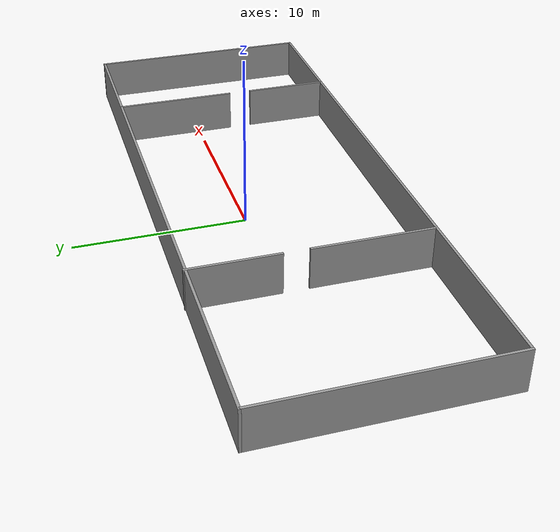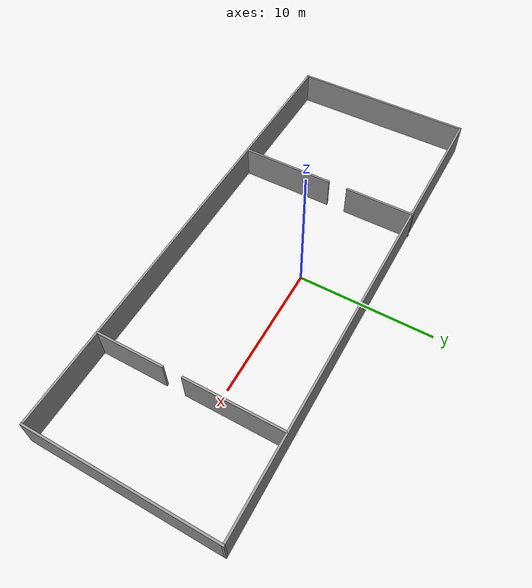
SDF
<?xml version='1.0'?>
<sdf version='1.6'>
  <model name='warehouse_2'>
    <pose frame=''>0.521646 -1.69147 0 0 -0 0</pose>
    <link name='Wall_10'>
      <collision name='Wall_10_Collision'>
        <geometry>
          <box>
            <size>5.25 0.15 2.5</size>
          </box>
        </geometry>
        <pose frame=''>0 0 1.25 0 -0 0</pose>
      </collision>
      <visual name='Wall_10_Visual'>
        <pose frame=''>0 0 1.25 0 -0 0</pose>
        <geometry>
          <box>
            <size>5.25 0.15 2.5</size>
          </box>
        </geometry>
        <material>
          <script>
            <uri>file://media/materials/scripts/gazebo.material</uri>
            <name>Gazebo/Grey</name>
          </script>
          <ambient>1 1 1 1</ambient>
        </material>
      </visual>
      <pose frame=''>-7.70602 4.27675 0 0 0 -1.5708</pose>
    </link>
    <link name='Wall_12'>
      <collision name='Wall_12_Collision'>
        <geometry>
          <box>
            <size>7 0.15 2.5</size>
          </box>
        </geometry>
        <pose frame=''>0 0 1.25 0 -0 0</pose>
      </collision>
      <visual name='Wall_12_Visual'>
        <pose frame=''>0 0 1.25 0 -0 0</pose>
        <geometry>
          <box>
            <size>7 0.15 2.5</size>
          </box>
        </geometry>
        <material>
          <script>
            <uri>file://media/materials/scripts/gazebo.material</uri>
            <name>Gazebo/Grey</name>
          </script>
          <ambient>1 1 1 1</ambient>
        </material>
      </visual>
      <pose frame=''>-7.70602 -3.28606 0 0 0 -1.5708</pose>
    </link>
    <link name='Wall_14'>
      <collision name='Wall_14_Collision'>
        <geometry>
          <box>
            <size>7.25 0.15 2.5</size>
          </box>
        </geometry>
        <pose frame=''>0 0 1.25 0 -0 0</pose>
      </collision>
      <visual name='Wall_14_Visual'>
        <pose frame=''>0 0 1.25 0 -0 0</pose>
        <geometry>
          <box>
            <size>7.25 0.15 2.5</size>
          </box>
        </geometry>
        <material>
          <script>
            <uri>file://media/materials/scripts/gazebo.material</uri>
            <name>Gazebo/Grey</name>
          </script>
          <ambient>1 1 1 1</ambient>
        </material>
      </visual>
      <pose frame=''>10.9664 3.16975 0 0 0 -1.5708</pose>
    </link>
    <link name='Wall_16'>
      <collision name='Wall_16_Collision'>
        <geometry>
          <box>
            <size>5 0.15 2.5</size>
          </box>
        </geometry>
        <pose frame=''>0 0 1.25 0 -0 0</pose>
      </collision>
      <visual name='Wall_16_Visual'>
        <pose frame=''>0 0 1.25 0 -0 0</pose>
        <geometry>
          <box>
            <size>5 0.15 2.5</size>
          </box>
        </geometry>
        <material>
          <script>
            <uri>file://media/materials/scripts/gazebo.material</uri>
            <name>Gazebo/Grey</name>
          </script>
          <ambient>1 1 1 1</ambient>
        </material>
      </visual>
      <pose frame=''>10.9664 -4.31916 0 0 0 -1.5708</pose>
    </link>
    <link name='Wall_4'>
      <collision name='Wall_4_Collision'>
        <geometry>
          <box>
            <size>13.75 0.15 2.5</size>
          </box>
        </geometry>
        <pose frame=''>0 0 1.25 0 -0 0</pose>
      </collision>
      <visual name='Wall_4_Visual'>
        <pose frame=''>0 0 1.25 0 -0 0</pose>
        <geometry>
          <box>
            <size>13.75 0.15 2.5</size>
          </box>
        </geometry>
        <material>
          <script>
            <uri>file://media/materials/scripts/gazebo.material</uri>
            <name>Gazebo/Grey</name>
          </script>
          <ambient>1 1 1 1</ambient>
        </material>
      </visual>
      <pose frame=''>-17.925 -0.026751 0 0 0 -1.5708</pose>
    </link>
    <link name='Wall_5'>
      <collision name='Wall_5_Collision'>
        <geometry>
          <box>
            <size>36 0.15 2.5</size>
          </box>
        </geometry>
        <pose frame=''>0 0 1.25 0 -0 0</pose>
      </collision>
      <visual name='Wall_5_Visual'>
        <pose frame=''>0 0 1.25 0 -0 0</pose>
        <geometry>
          <box>
            <size>36 0.15 2.5</size>
          </box>
        </geometry>
        <material>
          <script>
            <uri>file://media/materials/scripts/gazebo.material</uri>
            <name>Gazebo/Grey</name>
          </script>
          <ambient>1 1 1 1</ambient>
        </material>
      </visual>
      <pose frame=''>-1e-06 -6.82675 0 0 -0 0</pose>
    </link>
    <link name='Wall_6'>
      <collision name='Wall_6_Collision'>
        <geometry>
          <box>
            <size>13.75 0.15 2.5</size>
          </box>
        </geometry>
        <pose frame=''>0 0 1.25 0 -0 0</pose>
      </collision>
      <visual name='Wall_6_Visual'>
        <pose frame=''>0 0 1.25 0 -0 0</pose>
        <geometry>
          <box>
            <size>13.75 0.15 2.5</size>
          </box>
        </geometry>
        <material>
          <script>
            <uri>file://media/materials/scripts/gazebo.material</uri>
            <name>Gazebo/Grey</name>
          </script>
          <ambient>1 1 1 1</ambient>
        </material>
      </visual>
      <pose frame=''>17.925 -0.026751 0 0 -0 1.5708</pose>
    </link>
    <link name='Wall_7'>
      <collision name='Wall_7_Collision'>
        <geometry>
          <box>
            <size>36.0009 0.15 2.5</size>
          </box>
        </geometry>
        <pose frame=''>0 0 1.25 0 -0 0</pose>
      </collision>
      <visual name='Wall_7_Visual'>
        <pose frame=''>0 0 1.25 0 -0 0</pose>
        <geometry>
          <box>
            <size>36.0009 0.15 2.5</size>
          </box>
        </geometry>
        <material>
          <script>
            <uri>file://media/materials/scripts/gazebo.material</uri>
            <name>Gazebo/Grey</name>
          </script>
          <ambient>1 1 1 1</ambient>
        </material>
      </visual>
      <pose frame=''>-1e-06 6.77325 0 0 -0 3.14159</pose>
    </link>
    <static>1</static>
  </model>
</sdf>
